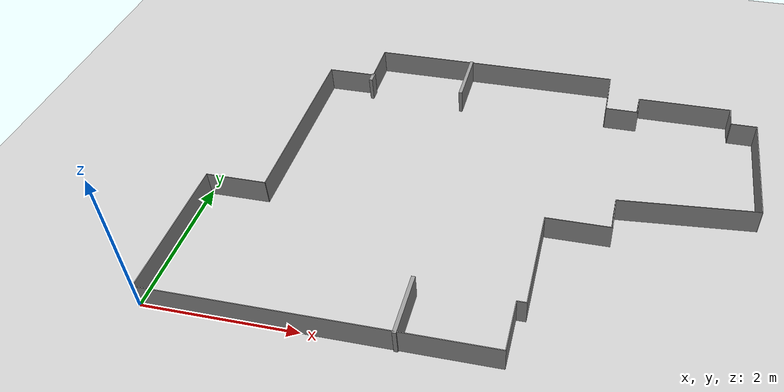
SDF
<?xml version="1.0"?>
<sdf version="1.4">
<world name="loco_lab">

  <include>
    <uri>model://sun</uri>
  </include>

  <gui>
    <camera name='main'>
      <pose>0 0 10 0 1.571 0</pose>
    </camera>
  </gui>

  <model name="ground_plane">
    <static>true</static>
    <link name="link">
      <collision name="collision">
        <geometry>
          <plane>
            <normal>0 0 1</normal>
            <size>150 150</size>
          </plane>
        </geometry>
        <surface>
          <friction>
            <ode>
              <mu>100</mu>
              <mu2>50</mu2>
            </ode>
          </friction>
        </surface>
      </collision>
      <visual name="visual">
        <cast_shadows>false</cast_shadows>
        <geometry>
          <plane>
            <normal>0 0 1</normal>
            <size>150 150</size>
          </plane>
        </geometry>
        <material>
          <script>
            <uri>file://media/materials/scripts/gazebo.material</uri>
            <name>Gazebo/Grey</name>
          </script>
        </material>
      </visual>
    </link>
  </model>

  <include>
    <uri>model://racecar_description/models/loco_lab</uri>
    <pose>0 0 0 0 0 0</pose>
  </include>

</world>
</sdf>

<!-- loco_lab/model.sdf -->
<sdf version='1.4'>
  <model name='model'>
    <link name='Wall_0'>
      <collision name='Wall_0_Collision'>
        <geometry>
          <box>
            <size>4.39 0.01 0.35</size>
          </box>
        </geometry>
        <pose>0 0 0.175 0 -0 0</pose>
      </collision>
      <visual name='Wall_0_Visual'>
        <pose>0 0 0.175 0 -0 0</pose>
        <geometry>
          <box>
            <size>4.39 0.01 0.35</size>
          </box>
        </geometry>
        <material>
          <script>
            <uri>file://media/materials/scripts/gazebo.material</uri>
            <name>Gazebo/Grey</name>
          </script>
        </material>
      </visual>
      <velocity_decay>
        <linear>0</linear>
        <angular>0</angular>
      </velocity_decay>
      <pose>2.19 0 0 0 -0 0</pose>
    </link>
    <link name='Wall_1'>
      <collision name='Wall_1_Collision'>
        <geometry>
          <box>
            <size>0.7 0.01 0.35</size>
          </box>
        </geometry>
        <pose>0 0 0.175 0 -0 0</pose>
      </collision>
      <visual name='Wall_1_Visual'>
        <pose>0 0 0.175 0 -0 0</pose>
        <geometry>
          <box>
            <size>0.7 0.01 0.35</size>
          </box>
        </geometry>
        <material>
          <script>
            <uri>file://media/materials/scripts/gazebo.material</uri>
            <name>Gazebo/Grey</name>
          </script>
        </material>
      </visual>
      <velocity_decay>
        <linear>0</linear>
        <angular>0</angular>
      </velocity_decay>
      <pose>4.38 0.345 0 0 -0 1.5708</pose>
    </link>
    <link name='Wall_10'>
      <collision name='Wall_10_Collision'>
        <geometry>
          <box>
            <size>1.32 0.01 0.35</size>
          </box>
        </geometry>
        <pose>0 0 0.175 0 -0 0</pose>
      </collision>
      <visual name='Wall_10_Visual'>
        <pose>0 0 0.175 0 -0 0</pose>
        <geometry>
          <box>
            <size>1.32 0.01 0.35</size>
          </box>
        </geometry>
        <material>
          <script>
            <uri>file://media/materials/scripts/gazebo.material</uri>
            <name>Gazebo/Grey</name>
          </script>
        </material>
      </visual>
      <velocity_decay>
        <linear>0</linear>
        <angular>0</angular>
      </velocity_decay>
      <pose>6.165 4.78 0 0 -0 3.14159</pose>
    </link>
    <link name='Wall_11'>
      <collision name='Wall_11_Collision'>
        <geometry>
          <box>
            <size>0.33 0.01 0.35</size>
          </box>
        </geometry>
        <pose>0 0 0.175 0 -0 0</pose>
      </collision>
      <visual name='Wall_11_Visual'>
        <pose>0 0 0.175 0 -0 0</pose>
        <geometry>
          <box>
            <size>0.33 0.01 0.35</size>
          </box>
        </geometry>
        <material>
          <script>
            <uri>file://media/materials/scripts/gazebo.material</uri>
            <name>Gazebo/Grey</name>
          </script>
        </material>
      </visual>
      <velocity_decay>
        <linear>0</linear>
        <angular>0</angular>
      </velocity_decay>
      <pose>5.51 4.62 0 0 0 -1.5708</pose>
    </link>
    <link name='Wall_12'>
      <collision name='Wall_12_Collision'>
        <geometry>
          <box>
            <size>0.47 0.01 0.35</size>
          </box>
        </geometry>
        <pose>0 0 0.175 0 -0 0</pose>
      </collision>
      <visual name='Wall_12_Visual'>
        <pose>0 0 0.175 0 -0 0</pose>
        <geometry>
          <box>
            <size>0.47 0.01 0.35</size>
          </box>
        </geometry>
        <material>
          <script>
            <uri>file://media/materials/scripts/gazebo.material</uri>
            <name>Gazebo/Grey</name>
          </script>
        </material>
      </visual>
      <velocity_decay>
        <linear>0</linear>
        <angular>0</angular>
      </velocity_decay>
      <pose>5.28 4.46 0 0 -0 3.14159</pose>
    </link>
    <link name='Wall_13'>
      <collision name='Wall_13_Collision'>
        <geometry>
          <box>
            <size>0.74 0.01 0.35</size>
          </box>
        </geometry>
        <pose>0 0 0.175 0 -0 0</pose>
      </collision>
      <visual name='Wall_13_Visual'>
        <pose>0 0 0.175 0 -0 0</pose>
        <geometry>
          <box>
            <size>0.74 0.01 0.35</size>
          </box>
        </geometry>
        <material>
          <script>
            <uri>file://media/materials/scripts/gazebo.material</uri>
            <name>Gazebo/Grey</name>
          </script>
        </material>
      </visual>
      <velocity_decay>
        <linear>0</linear>
        <angular>0</angular>
      </velocity_decay>
      <pose>5.05 4.825 0 0 -0 1.5708</pose>
    </link>
    <link name='Wall_14'>
      <collision name='Wall_14_Collision'>
        <geometry>
          <box>
            <size>3.56 0.01 0.35</size>
          </box>
        </geometry>
        <pose>0 0 0.175 0 -0 0</pose>
      </collision>
      <visual name='Wall_14_Visual'>
        <pose>0 0 0.175 0 -0 0</pose>
        <geometry>
          <box>
            <size>3.56 0.01 0.35</size>
          </box>
        </geometry>
        <material>
          <script>
            <uri>file://media/materials/scripts/gazebo.material</uri>
            <name>Gazebo/Grey</name>
          </script>
        </material>
      </visual>
      <velocity_decay>
        <linear>0</linear>
        <angular>0</angular>
      </velocity_decay>
      <pose>3.275 5.19 0 0 -0 3.14159</pose>
    </link>
    <link name='Wall_15'>
      <collision name='Wall_15_Collision'>
        <geometry>
          <box>
            <size>0.63 0.01 0.35</size>
          </box>
        </geometry>
        <pose>0 0 0.175 0 -0 0</pose>
      </collision>
      <visual name='Wall_15_Visual'>
        <pose>0 0 0.175 0 -0 0</pose>
        <geometry>
          <box>
            <size>0.63 0.01 0.35</size>
          </box>
        </geometry>
        <material>
          <script>
            <uri>file://media/materials/scripts/gazebo.material</uri>
            <name>Gazebo/Grey</name>
          </script>
        </material>
      </visual>
      <velocity_decay>
        <linear>0</linear>
        <angular>0</angular>
      </velocity_decay>
      <pose>1.5 4.88 0 0 0 -1.5708</pose>
    </link>
    <link name='Wall_16'>
      <collision name='Wall_16_Collision'>
        <geometry>
          <box>
            <size>0.680386 0.01 0.35</size>
          </box>
        </geometry>
        <pose>0 0 0.175 0 -0 0</pose>
      </collision>
      <visual name='Wall_16_Visual'>
        <pose>0 0 0.175 0 -0 0</pose>
        <geometry>
          <box>
            <size>0.680386 0.01 0.35</size>
          </box>
        </geometry>
        <material>
          <script>
            <uri>file://media/materials/scripts/gazebo.material</uri>
            <name>Gazebo/Grey</name>
          </script>
        </material>
      </visual>
      <velocity_decay>
        <linear>0</linear>
        <angular>0</angular>
      </velocity_decay>
      <pose>1.165 4.57 0 0 -0 3.14159</pose>
    </link>
    <link name='Wall_17'>
      <collision name='Wall_17_Collision'>
        <geometry>
          <box>
            <size>2.62002 0.01 0.35</size>
          </box>
        </geometry>
        <pose>0 0 0.175 0 -0 0</pose>
      </collision>
      <visual name='Wall_17_Visual'>
        <pose>0 0 0.175 0 -0 0</pose>
        <geometry>
          <box>
            <size>2.62002 0.01 0.35</size>
          </box>
        </geometry>
        <material>
          <script>
            <uri>file://media/materials/scripts/gazebo.material</uri>
            <name>Gazebo/Grey</name>
          </script>
        </material>
      </visual>
      <velocity_decay>
        <linear>0</linear>
        <angular>0</angular>
      </velocity_decay>
      <pose>0.825 3.265 0 0 0 -1.57463</pose>
    </link>
    <link name='Wall_18'>
      <collision name='Wall_18_Collision'>
        <geometry>
          <box>
            <size>0.83 0.01 0.35</size>
          </box>
        </geometry>
        <pose>0 0 0.175 0 -0 0</pose>
      </collision>
      <visual name='Wall_18_Visual'>
        <pose>0 0 0.175 0 -0 0</pose>
        <geometry>
          <box>
            <size>0.83 0.01 0.35</size>
          </box>
        </geometry>
        <material>
          <script>
            <uri>file://media/materials/scripts/gazebo.material</uri>
            <name>Gazebo/Grey</name>
          </script>
        </material>
      </visual>
      <velocity_decay>
        <linear>0</linear>
        <angular>0</angular>
      </velocity_decay>
      <pose>0.41 1.96 0 0 -0 3.14159</pose>
    </link>
    <link name='Wall_19'>
      <collision name='Wall_19_Collision'>
        <geometry>
          <box>
            <size>1.97 0.01 0.35</size>
          </box>
        </geometry>
        <pose>0 0 0.175 0 -0 0</pose>
      </collision>
      <visual name='Wall_19_Visual'>
        <pose>0 0 0.175 0 -0 0</pose>
        <geometry>
          <box>
            <size>1.97 0.01 0.35</size>
          </box>
        </geometry>
        <material>
          <script>
            <uri>file://media/materials/scripts/gazebo.material</uri>
            <name>Gazebo/Grey</name>
          </script>
        </material>
      </visual>
      <velocity_decay>
        <linear>0</linear>
        <angular>0</angular>
      </velocity_decay>
      <pose>0 0.98 0 0 0 -1.5708</pose>
    </link>
    <link name='Wall_2'>
      <collision name='Wall_2_Collision'>
        <geometry>
          <box>
            <size>0.13 0.01 0.35</size>
          </box>
        </geometry>
        <pose>0 0 0.175 0 -0 0</pose>
      </collision>
      <visual name='Wall_2_Visual'>
        <pose>0 0 0.175 0 -0 0</pose>
        <geometry>
          <box>
            <size>0.13 0.01 0.35</size>
          </box>
        </geometry>
        <material>
          <script>
            <uri>file://media/materials/scripts/gazebo.material</uri>
            <name>Gazebo/Grey</name>
          </script>
        </material>
      </visual>
      <velocity_decay>
        <linear>0</linear>
        <angular>0</angular>
      </velocity_decay>
      <pose>4.44 0.69 0 0 -0 0</pose>
    </link>
    <link name='Wall_21'>
      <collision name='Wall_21_Collision'>
        <geometry>
          <box>
            <size>0.16 0.05 0.35</size>
          </box>
        </geometry>
        <pose>0 0 0.175 0 -0 0</pose>
      </collision>
      <visual name='Wall_21_Visual'>
        <pose>0 0 0.175 0 -0 0</pose>
        <geometry>
          <box>
            <size>0.16 0.05 0.35</size>
          </box>
        </geometry>
        <material>
          <script>
            <uri>file://media/materials/scripts/gazebo.material</uri>
            <name>Gazebo/Grey</name>
          </script>
        </material>
      </visual>
      <velocity_decay>
        <linear>0</linear>
        <angular>0</angular>
      </velocity_decay>
      <pose>1.5 4.515 0 0 0 -1.5708</pose>
    </link>
    <link name='Wall_23'>
      <collision name='Wall_23_Collision'>
        <geometry>
          <box>
            <size>0.82 0.05 0.35</size>
          </box>
        </geometry>
        <pose>0 0 0.175 0 -0 0</pose>
      </collision>
      <visual name='Wall_23_Visual'>
        <pose>0 0 0.175 0 -0 0</pose>
        <geometry>
          <box>
            <size>0.82 0.05 0.35</size>
          </box>
        </geometry>
        <material>
          <script>
            <uri>file://media/materials/scripts/gazebo.material</uri>
            <name>Gazebo/Grey</name>
          </script>
        </material>
      </visual>
      <velocity_decay>
        <linear>0</linear>
        <angular>0</angular>
      </velocity_decay>
      <pose>2.9 4.805 0 0 0 -1.5708</pose>
    </link>
    <link name='Wall_25'>
      <collision name='Wall_25_Collision'>
        <geometry>
          <box>
            <size>0.83 0.05 0.35</size>
          </box>
        </geometry>
        <pose>0 0 0.175 0 -0 0</pose>
      </collision>
      <visual name='Wall_25_Visual'>
        <pose>0 0 0.175 0 -0 0</pose>
        <geometry>
          <box>
            <size>0.83 0.05 0.35</size>
          </box>
        </geometry>
        <material>
          <script>
            <uri>file://media/materials/scripts/gazebo.material</uri>
            <name>Gazebo/Grey</name>
          </script>
        </material>
      </visual>
      <velocity_decay>
        <linear>0</linear>
        <angular>0</angular>
      </velocity_decay>
      <pose>3.14 0.39 0 0 -0 1.5708</pose>
    </link>
    <link name='Wall_3'>
      <collision name='Wall_3_Collision'>
        <geometry>
          <box>
            <size>1.39 0.01 0.35</size>
          </box>
        </geometry>
        <pose>0 0 0.175 0 -0 0</pose>
      </collision>
      <visual name='Wall_3_Visual'>
        <pose>0 0 0.175 0 -0 0</pose>
        <geometry>
          <box>
            <size>1.39 0.01 0.35</size>
          </box>
        </geometry>
        <material>
          <script>
            <uri>file://media/materials/scripts/gazebo.material</uri>
            <name>Gazebo/Grey</name>
          </script>
        </material>
      </visual>
      <velocity_decay>
        <linear>0</linear>
        <angular>0</angular>
      </velocity_decay>
      <pose>4.5 1.38 0 0 -0 1.5708</pose>
    </link>
    <link name='Wall_4'>
      <collision name='Wall_4_Collision'>
        <geometry>
          <box>
            <size>0.86 0.01 0.35</size>
          </box>
        </geometry>
        <pose>0 0 0.175 0 -0 0</pose>
      </collision>
      <visual name='Wall_4_Visual'>
        <pose>0 0 0.175 0 -0 0</pose>
        <geometry>
          <box>
            <size>0.86 0.01 0.35</size>
          </box>
        </geometry>
        <material>
          <script>
            <uri>file://media/materials/scripts/gazebo.material</uri>
            <name>Gazebo/Grey</name>
          </script>
        </material>
      </visual>
      <velocity_decay>
        <linear>0</linear>
        <angular>0</angular>
      </velocity_decay>
      <pose>4.925 2.07 0 0 -0 0</pose>
    </link>
    <link name='Wall_5'>
      <collision name='Wall_5_Collision'>
        <geometry>
          <box>
            <size>0.51 0.01 0.35</size>
          </box>
        </geometry>
        <pose>0 0 0.175 0 -0 0</pose>
      </collision>
      <visual name='Wall_5_Visual'>
        <pose>0 0 0.175 0 -0 0</pose>
        <geometry>
          <box>
            <size>0.51 0.01 0.35</size>
          </box>
        </geometry>
        <material>
          <script>
            <uri>file://media/materials/scripts/gazebo.material</uri>
            <name>Gazebo/Grey</name>
          </script>
        </material>
      </visual>
      <velocity_decay>
        <linear>0</linear>
        <angular>0</angular>
      </velocity_decay>
      <pose>5.35 2.32 0 0 -0 1.5708</pose>
    </link>
    <link name='Wall_6'>
      <collision name='Wall_6_Collision'>
        <geometry>
          <box>
            <size>1.84614 0.01 0.35</size>
          </box>
        </geometry>
        <pose>0 0 0.175 0 -0 0</pose>
      </collision>
      <visual name='Wall_6_Visual'>
        <pose>0 0 0.175 0 -0 0</pose>
        <geometry>
          <box>
            <size>1.84614 0.01 0.35</size>
          </box>
        </geometry>
        <material>
          <script>
            <uri>file://media/materials/scripts/gazebo.material</uri>
            <name>Gazebo/Grey</name>
          </script>
        </material>
      </visual>
      <velocity_decay>
        <linear>0</linear>
        <angular>0</angular>
      </velocity_decay>
      <pose>6.265 2.645 0 0 -0 0.081784</pose>
    </link>
    <link name='Wall_7'>
      <collision name='Wall_7_Collision'>
        <geometry>
          <box>
            <size>1.75 0.01 0.35</size>
          </box>
        </geometry>
        <pose>0 0 0.175 0 -0 0</pose>
      </collision>
      <visual name='Wall_7_Visual'>
        <pose>0 0 0.175 0 -0 0</pose>
        <geometry>
          <box>
            <size>1.75 0.01 0.35</size>
          </box>
        </geometry>
        <material>
          <script>
            <uri>file://media/materials/scripts/gazebo.material</uri>
            <name>Gazebo/Grey</name>
          </script>
        </material>
      </visual>
      <velocity_decay>
        <linear>0</linear>
        <angular>0</angular>
      </velocity_decay>
      <pose>7.18 3.59 0 0 -0 1.5708</pose>
    </link>
    <link name='Wall_8'>
      <collision name='Wall_8_Collision'>
        <geometry>
          <box>
            <size>0.37 0.01 0.35</size>
          </box>
        </geometry>
        <pose>0 0 0.175 0 -0 0</pose>
      </collision>
      <visual name='Wall_8_Visual'>
        <pose>0 0 0.175 0 -0 0</pose>
        <geometry>
          <box>
            <size>0.37 0.01 0.35</size>
          </box>
        </geometry>
        <material>
          <script>
            <uri>file://media/materials/scripts/gazebo.material</uri>
            <name>Gazebo/Grey</name>
          </script>
        </material>
      </visual>
      <velocity_decay>
        <linear>0</linear>
        <angular>0</angular>
      </velocity_decay>
      <pose>7 4.46 0 0 -0 3.14159</pose>
    </link>
    <link name='Wall_9'>
      <collision name='Wall_9_Collision'>
        <geometry>
          <box>
            <size>0.33 0.01 0.35</size>
          </box>
        </geometry>
        <pose>0 0 0.175 0 -0 0</pose>
      </collision>
      <visual name='Wall_9_Visual'>
        <pose>0 0 0.175 0 -0 0</pose>
        <geometry>
          <box>
            <size>0.33 0.01 0.35</size>
          </box>
        </geometry>
        <material>
          <script>
            <uri>file://media/materials/scripts/gazebo.material</uri>
            <name>Gazebo/Grey</name>
          </script>
        </material>
      </visual>
      <velocity_decay>
        <linear>0</linear>
        <angular>0</angular>
      </velocity_decay>
      <pose>6.82 4.62 0 0 -0 1.5708</pose>
    </link>
    <static>1</static>
  </model>
</sdf>
